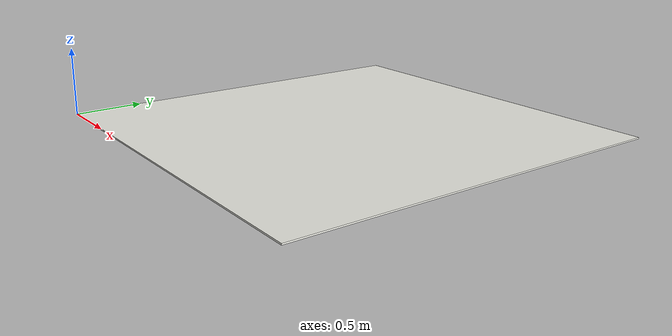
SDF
<sdf version="1.9">
 <world name="maze_16x16">
  <model name="maze_floor">
   <static>true</static>
   <pose>1.4400 1.4400 0 0 0 0</pose>
   <link name="floor_link">
    <collision name="floor_collision"><geometry><box><size>2.8800 2.8800 0.01</size></box></geometry></collision>
    <visual name="floor_visual">
     <geometry><box><size>2.8800 2.8800 0.01</size></box></geometry>
     <material><ambient>0.95 0.95 0.92 1</ambient><diffuse>0.95 0.95 0.92 1</diffuse></material>
    </visual>
   </link>
  </model>
 </world>
</sdf>
